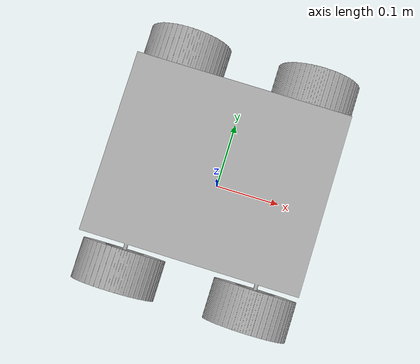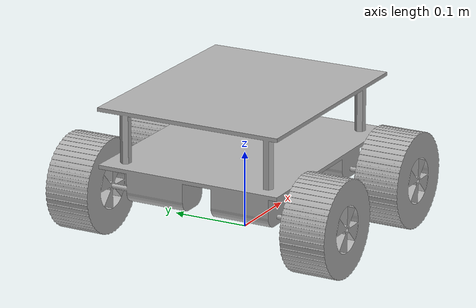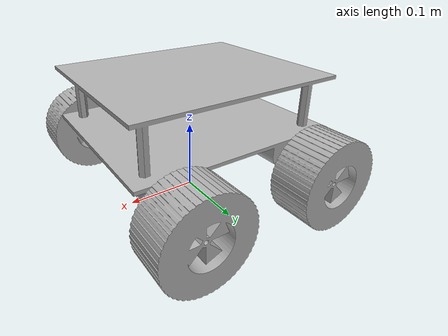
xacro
<?xml version="1.0" ?>
<robot name="navrobot" xmlns:xacro="http://www.ros.org/wiki/xacro">

<xacro:include filename="$(find navrobot_description)/urdf/materials.xacro" />
<xacro:include filename="$(find navrobot_description)/urdf/navrobot.trans" />
<xacro:include filename="$(find navrobot_description)/urdf/navrobot.gazebo" />
<link name="base_link">
  <inertial>
    <origin rpy="0 0 0" xyz="0.0003147036812544579 8.654508451149124e-05 0.11079103947899595"/>
    <mass value="12.261671363008963"/>
    <inertia ixx="0.081478" ixy="-0.0" ixz="9.1e-05" iyy="0.132969" iyz="2.5e-05" izz="0.169987"/>
  </inertial>
  <visual>
    <origin rpy="0 0 0" xyz="0 0 0"/>
    <geometry>
      <mesh filename="package://navrobot_description/meshes/base_link.stl" scale="0.001 0.001 0.001"/>
    </geometry>
    <material name="silver"/>
  </visual>
  <collision>
    <origin rpy="0 0 0" xyz="0 0 0"/>
    <geometry>
      <mesh filename="package://navrobot_description/meshes/base_link.stl" scale="0.001 0.001 0.001"/>
    </geometry>
  </collision>
</link>

<link name="Component3_2">
  <inertial>
    <origin rpy="0 0 0" xyz="0.020039540828919386 0.0458031981819553 -0.10267664671429488"/>
    <mass value="0.8855619105503734"/>
    <inertia ixx="0.001219" ixy="-0.0" ixz="-0.0" iyy="0.00192" iyz="-0.0" izz="0.001219"/>
  </inertial>
  <visual>
    <origin rpy="0 0 0" xyz="-0.080388 -0.11879 -0.165353"/>
    <geometry>
      <mesh filename="package://navrobot_description/meshes/Component3_2.stl" scale="0.001 0.001 0.001"/>
    </geometry>
    <material name="silver"/>
  </visual>
  <collision>
    <origin rpy="0 0 0" xyz="-0.080388 -0.11879 -0.165353"/>
    <geometry>
      <mesh filename="package://navrobot_description/meshes/Component3_2.stl" scale="0.001 0.001 0.001"/>
    </geometry>
  </collision>
</link>

<link name="Component3_1">
  <inertial>
    <origin rpy="0 0 0" xyz="0.020039540828919386 0.045803198181955246 -0.10267664731034133"/>
    <mass value="0.8855619105503734"/>
    <inertia ixx="0.001219" ixy="-0.0" ixz="-0.0" iyy="0.00192" iyz="-0.0" izz="0.001219"/>
  </inertial>
  <visual>
    <origin rpy="0 0 0" xyz="0.119612 -0.11879 -0.165353"/>
    <geometry>
      <mesh filename="package://navrobot_description/meshes/Component3_1.stl" scale="0.001 0.001 0.001"/>
    </geometry>
    <material name="silver"/>
  </visual>
  <collision>
    <origin rpy="0 0 0" xyz="0.119612 -0.11879 -0.165353"/>
    <geometry>
      <mesh filename="package://navrobot_description/meshes/Component3_1.stl" scale="0.001 0.001 0.001"/>
    </geometry>
  </collision>
</link>

<link name="Component3_4">
  <inertial>
    <origin rpy="0 0 0" xyz="0.020039540270125847 0.01580319818195519 -0.10267664731034133"/>
    <mass value="0.8855619105503734"/>
    <inertia ixx="0.001219" ixy="-0.0" ixz="-0.0" iyy="0.00192" iyz="-0.0" izz="0.001219"/>
  </inertial>
  <visual>
    <origin rpy="0 0 0" xyz="0.119612 0.18121 -0.165353"/>
    <geometry>
      <mesh filename="package://navrobot_description/meshes/Component3_4.stl" scale="0.001 0.001 0.001"/>
    </geometry>
    <material name="silver"/>
  </visual>
  <collision>
    <origin rpy="0 0 0" xyz="0.119612 0.18121 -0.165353"/>
    <geometry>
      <mesh filename="package://navrobot_description/meshes/Component3_4.stl" scale="0.001 0.001 0.001"/>
    </geometry>
  </collision>
</link>

<link name="Component3_3">
  <inertial>
    <origin rpy="0 0 0" xyz="0.020039540828919247 0.01580319818195522 -0.10267664671429488"/>
    <mass value="0.8855619105503734"/>
    <inertia ixx="0.001219" ixy="-0.0" ixz="-0.0" iyy="0.00192" iyz="-0.0" izz="0.001219"/>
  </inertial>
  <visual>
    <origin rpy="0 0 0" xyz="-0.080388 0.18121 -0.165353"/>
    <geometry>
      <mesh filename="package://navrobot_description/meshes/Component3_3.stl" scale="0.001 0.001 0.001"/>
    </geometry>
    <material name="silver"/>
  </visual>
  <collision>
    <origin rpy="0 0 0" xyz="-0.080388 0.18121 -0.165353"/>
    <geometry>
      <mesh filename="package://navrobot_description/meshes/Component3_3.stl" scale="0.001 0.001 0.001"/>
    </geometry>
  </collision>
</link>

<joint name="Rev2" type="continuous">
  <origin rpy="0 0 0" xyz="0.080388 0.11879 0.165353"/>
  <parent link="base_link"/>
  <child link="Component3_2"/>
  <axis xyz="0.0 1.0 0.0"/>
</joint>

<joint name="Rev3" type="continuous">
  <origin rpy="0 0 0" xyz="-0.119612 0.11879 0.165353"/>
  <parent link="base_link"/>
  <child link="Component3_1"/>
  <axis xyz="0.0 1.0 0.0"/>
</joint>

<joint name="Rev4" type="continuous">
  <origin rpy="0 0 0" xyz="-0.119612 -0.18121 0.165353"/>
  <parent link="base_link"/>
  <child link="Component3_4"/>
  <axis xyz="-0.0 -1.0 -0.0"/>
</joint>

<joint name="Rev5" type="continuous">
  <origin rpy="0 0 0" xyz="0.080388 -0.18121 0.165353"/>
  <parent link="base_link"/>
  <child link="Component3_3"/>
  <axis xyz="-0.0 -1.0 -0.0"/>
</joint>

</robot>

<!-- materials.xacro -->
<robot name="navrobot" xmlns:xacro="http://www.ros.org/wiki/xacro" >

<material name="silver">
  <color rgba="0.700 0.700 0.700 1.000"/>
</material>

</robot>

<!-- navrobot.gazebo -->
<robot name="navrobot" xmlns:xacro="http://www.ros.org/wiki/xacro" >

<xacro:property name="body_color" value="Gazebo/Silver" />

<gazebo>
  <plugin filename="libgazebo_ros_control.so" name="control"/>
</gazebo>
<gazebo reference="base_link">
  <material>${body_color}</material>
  <mu1>0.2</mu1>
  <mu2>0.2</mu2>
  <selfCollide>true</selfCollide>
  <gravity>true</gravity>
</gazebo>

<gazebo reference="Component3_2">
  <material>${body_color}</material>
  <mu1>0.2</mu1>
  <mu2>0.2</mu2>
  <selfCollide>true</selfCollide>
</gazebo>

<gazebo reference="Component3_1">
  <material>${body_color}</material>
  <mu1>0.2</mu1>
  <mu2>0.2</mu2>
  <selfCollide>true</selfCollide>
</gazebo>

<gazebo reference="Component3_4">
  <material>${body_color}</material>
  <mu1>0.2</mu1>
  <mu2>0.2</mu2>
  <selfCollide>true</selfCollide>
</gazebo>

<gazebo reference="Component3_3">
  <material>${body_color}</material>
  <mu1>0.2</mu1>
  <mu2>0.2</mu2>
  <selfCollide>true</selfCollide>
</gazebo>

</robot>
